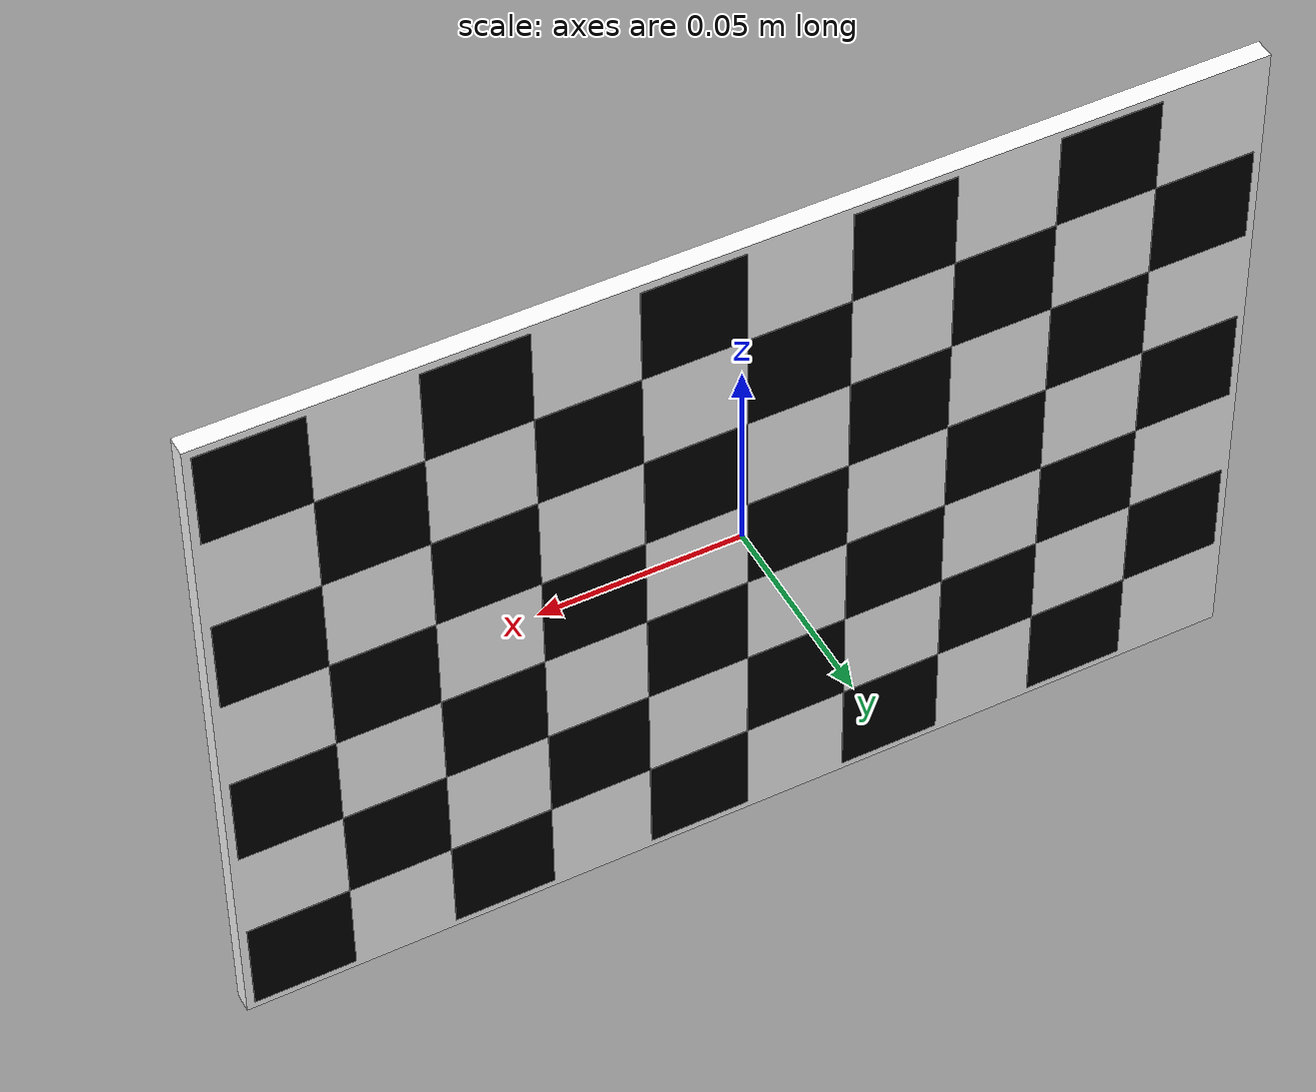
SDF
<?xml version="1.0" encoding="UTF-8"?>
<sdf version="1.7">
  <model name="calibration_checkerboard">
    <static>true</static>
    <link name="board">
      <pose>0 0 0 0 0 0</pose>
      <visual name="board_white">
        <geometry>
          <box>
            <size>0.254 0.005 0.179</size>
          </box>
        </geometry>
        <material>
          <ambient>1 1 1 1</ambient>
          <diffuse>1 1 1 1</diffuse>
          <specular>0 0 0 1</specular>
        </material>
      </visual>
      <visual name="black_square_r0_c1"><pose>-0.0875 0 0.075 0 0 0</pose><geometry><box><size>0.025 0.0054 0.025</size></box></geometry><material><ambient>0 0 0 1</ambient><diffuse>0 0 0 1</diffuse><specular>0 0 0 1</specular></material></visual>
      <visual name="black_square_r0_c3"><pose>-0.0375 0 0.075 0 0 0</pose><geometry><box><size>0.025 0.0054 0.025</size></box></geometry><material><ambient>0 0 0 1</ambient><diffuse>0 0 0 1</diffuse><specular>0 0 0 1</specular></material></visual>
      <visual name="black_square_r0_c5"><pose>0.0125 0 0.075 0 0 0</pose><geometry><box><size>0.025 0.0054 0.025</size></box></geometry><material><ambient>0 0 0 1</ambient><diffuse>0 0 0 1</diffuse><specular>0 0 0 1</specular></material></visual>
      <visual name="black_square_r0_c7"><pose>0.0625 0 0.075 0 0 0</pose><geometry><box><size>0.025 0.0054 0.025</size></box></geometry><material><ambient>0 0 0 1</ambient><diffuse>0 0 0 1</diffuse><specular>0 0 0 1</specular></material></visual>
      <visual name="black_square_r0_c9"><pose>0.1125 0 0.075 0 0 0</pose><geometry><box><size>0.025 0.0054 0.025</size></box></geometry><material><ambient>0 0 0 1</ambient><diffuse>0 0 0 1</diffuse><specular>0 0 0 1</specular></material></visual>
      <visual name="black_square_r1_c0"><pose>-0.1125 0 0.05 0 0 0</pose><geometry><box><size>0.025 0.0054 0.025</size></box></geometry><material><ambient>0 0 0 1</ambient><diffuse>0 0 0 1</diffuse><specular>0 0 0 1</specular></material></visual>
      <visual name="black_square_r1_c2"><pose>-0.0625 0 0.05 0 0 0</pose><geometry><box><size>0.025 0.0054 0.025</size></box></geometry><material><ambient>0 0 0 1</ambient><diffuse>0 0 0 1</diffuse><specular>0 0 0 1</specular></material></visual>
      <visual name="black_square_r1_c4"><pose>-0.0125 0 0.05 0 0 0</pose><geometry><box><size>0.025 0.0054 0.025</size></box></geometry><material><ambient>0 0 0 1</ambient><diffuse>0 0 0 1</diffuse><specular>0 0 0 1</specular></material></visual>
      <visual name="black_square_r1_c6"><pose>0.0375 0 0.05 0 0 0</pose><geometry><box><size>0.025 0.0054 0.025</size></box></geometry><material><ambient>0 0 0 1</ambient><diffuse>0 0 0 1</diffuse><specular>0 0 0 1</specular></material></visual>
      <visual name="black_square_r1_c8"><pose>0.0875 0 0.05 0 0 0</pose><geometry><box><size>0.025 0.0054 0.025</size></box></geometry><material><ambient>0 0 0 1</ambient><diffuse>0 0 0 1</diffuse><specular>0 0 0 1</specular></material></visual>
      <visual name="black_square_r2_c1"><pose>-0.0875 0 0.025 0 0 0</pose><geometry><box><size>0.025 0.0054 0.025</size></box></geometry><material><ambient>0 0 0 1</ambient><diffuse>0 0 0 1</diffuse><specular>0 0 0 1</specular></material></visual>
      <visual name="black_square_r2_c3"><pose>-0.0375 0 0.025 0 0 0</pose><geometry><box><size>0.025 0.0054 0.025</size></box></geometry><material><ambient>0 0 0 1</ambient><diffuse>0 0 0 1</diffuse><specular>0 0 0 1</specular></material></visual>
      <visual name="black_square_r2_c5"><pose>0.0125 0 0.025 0 0 0</pose><geometry><box><size>0.025 0.0054 0.025</size></box></geometry><material><ambient>0 0 0 1</ambient><diffuse>0 0 0 1</diffuse><specular>0 0 0 1</specular></material></visual>
      <visual name="black_square_r2_c7"><pose>0.0625 0 0.025 0 0 0</pose><geometry><box><size>0.025 0.0054 0.025</size></box></geometry><material><ambient>0 0 0 1</ambient><diffuse>0 0 0 1</diffuse><specular>0 0 0 1</specular></material></visual>
      <visual name="black_square_r2_c9"><pose>0.1125 0 0.025 0 0 0</pose><geometry><box><size>0.025 0.0054 0.025</size></box></geometry><material><ambient>0 0 0 1</ambient><diffuse>0 0 0 1</diffuse><specular>0 0 0 1</specular></material></visual>
      <visual name="black_square_r3_c0"><pose>-0.1125 0 0 0 0 0</pose><geometry><box><size>0.025 0.0054 0.025</size></box></geometry><material><ambient>0 0 0 1</ambient><diffuse>0 0 0 1</diffuse><specular>0 0 0 1</specular></material></visual>
      <visual name="black_square_r3_c2"><pose>-0.0625 0 0 0 0 0</pose><geometry><box><size>0.025 0.0054 0.025</size></box></geometry><material><ambient>0 0 0 1</ambient><diffuse>0 0 0 1</diffuse><specular>0 0 0 1</specular></material></visual>
      <visual name="black_square_r3_c4"><pose>-0.0125 0 0 0 0 0</pose><geometry><box><size>0.025 0.0054 0.025</size></box></geometry><material><ambient>0 0 0 1</ambient><diffuse>0 0 0 1</diffuse><specular>0 0 0 1</specular></material></visual>
      <visual name="black_square_r3_c6"><pose>0.0375 0 0 0 0 0</pose><geometry><box><size>0.025 0.0054 0.025</size></box></geometry><material><ambient>0 0 0 1</ambient><diffuse>0 0 0 1</diffuse><specular>0 0 0 1</specular></material></visual>
      <visual name="black_square_r3_c8"><pose>0.0875 0 0 0 0 0</pose><geometry><box><size>0.025 0.0054 0.025</size></box></geometry><material><ambient>0 0 0 1</ambient><diffuse>0 0 0 1</diffuse><specular>0 0 0 1</specular></material></visual>
      <visual name="black_square_r4_c1"><pose>-0.0875 0 -0.025 0 0 0</pose><geometry><box><size>0.025 0.0054 0.025</size></box></geometry><material><ambient>0 0 0 1</ambient><diffuse>0 0 0 1</diffuse><specular>0 0 0 1</specular></material></visual>
      <visual name="black_square_r4_c3"><pose>-0.0375 0 -0.025 0 0 0</pose><geometry><box><size>0.025 0.0054 0.025</size></box></geometry><material><ambient>0 0 0 1</ambient><diffuse>0 0 0 1</diffuse><specular>0 0 0 1</specular></material></visual>
      <visual name="black_square_r4_c5"><pose>0.0125 0 -0.025 0 0 0</pose><geometry><box><size>0.025 0.0054 0.025</size></box></geometry><material><ambient>0 0 0 1</ambient><diffuse>0 0 0 1</diffuse><specular>0 0 0 1</specular></material></visual>
      <visual name="black_square_r4_c7"><pose>0.0625 0 -0.025 0 0 0</pose><geometry><box><size>0.025 0.0054 0.025</size></box></geometry><material><ambient>0 0 0 1</ambient><diffuse>0 0 0 1</diffuse><specular>0 0 0 1</specular></material></visual>
      <visual name="black_square_r4_c9"><pose>0.1125 0 -0.025 0 0 0</pose><geometry><box><size>0.025 0.0054 0.025</size></box></geometry><material><ambient>0 0 0 1</ambient><diffuse>0 0 0 1</diffuse><specular>0 0 0 1</specular></material></visual>
      <visual name="black_square_r5_c0"><pose>-0.1125 0 -0.05 0 0 0</pose><geometry><box><size>0.025 0.0054 0.025</size></box></geometry><material><ambient>0 0 0 1</ambient><diffuse>0 0 0 1</diffuse><specular>0 0 0 1</specular></material></visual>
      <visual name="black_square_r5_c2"><pose>-0.0625 0 -0.05 0 0 0</pose><geometry><box><size>0.025 0.0054 0.025</size></box></geometry><material><ambient>0 0 0 1</ambient><diffuse>0 0 0 1</diffuse><specular>0 0 0 1</specular></material></visual>
      <visual name="black_square_r5_c4"><pose>-0.0125 0 -0.05 0 0 0</pose><geometry><box><size>0.025 0.0054 0.025</size></box></geometry><material><ambient>0 0 0 1</ambient><diffuse>0 0 0 1</diffuse><specular>0 0 0 1</specular></material></visual>
      <visual name="black_square_r5_c6"><pose>0.0375 0 -0.05 0 0 0</pose><geometry><box><size>0.025 0.0054 0.025</size></box></geometry><material><ambient>0 0 0 1</ambient><diffuse>0 0 0 1</diffuse><specular>0 0 0 1</specular></material></visual>
      <visual name="black_square_r5_c8"><pose>0.0875 0 -0.05 0 0 0</pose><geometry><box><size>0.025 0.0054 0.025</size></box></geometry><material><ambient>0 0 0 1</ambient><diffuse>0 0 0 1</diffuse><specular>0 0 0 1</specular></material></visual>
      <visual name="black_square_r6_c1"><pose>-0.0875 0 -0.075 0 0 0</pose><geometry><box><size>0.025 0.0054 0.025</size></box></geometry><material><ambient>0 0 0 1</ambient><diffuse>0 0 0 1</diffuse><specular>0 0 0 1</specular></material></visual>
      <visual name="black_square_r6_c3"><pose>-0.0375 0 -0.075 0 0 0</pose><geometry><box><size>0.025 0.0054 0.025</size></box></geometry><material><ambient>0 0 0 1</ambient><diffuse>0 0 0 1</diffuse><specular>0 0 0 1</specular></material></visual>
      <visual name="black_square_r6_c5"><pose>0.0125 0 -0.075 0 0 0</pose><geometry><box><size>0.025 0.0054 0.025</size></box></geometry><material><ambient>0 0 0 1</ambient><diffuse>0 0 0 1</diffuse><specular>0 0 0 1</specular></material></visual>
      <visual name="black_square_r6_c7"><pose>0.0625 0 -0.075 0 0 0</pose><geometry><box><size>0.025 0.0054 0.025</size></box></geometry><material><ambient>0 0 0 1</ambient><diffuse>0 0 0 1</diffuse><specular>0 0 0 1</specular></material></visual>
      <visual name="black_square_r6_c9"><pose>0.1125 0 -0.075 0 0 0</pose><geometry><box><size>0.025 0.0054 0.025</size></box></geometry><material><ambient>0 0 0 1</ambient><diffuse>0 0 0 1</diffuse><specular>0 0 0 1</specular></material></visual>
      <collision name="collision">
        <geometry>
          <box>
            <size>0.254 0.005 0.179</size>
          </box>
        </geometry>
      </collision>
      <inertial>
        <mass>0.2</mass>
        <inertia>
          <ixx>0.001</ixx>
          <ixy>0</ixy>
          <ixz>0</ixz>
          <iyy>0.001</iyy>
          <iyz>0</iyz>
          <izz>0.001</izz>
        </inertia>
      </inertial>
    </link>
  </model>
</sdf>
